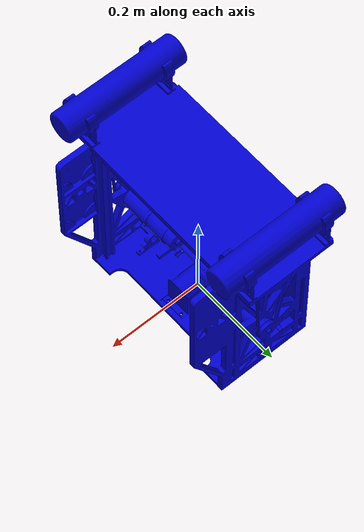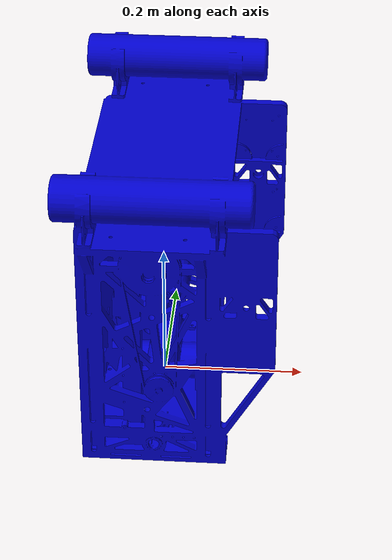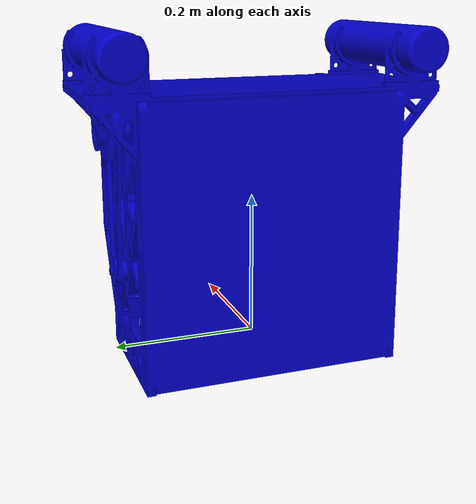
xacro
<?xml version="1.0"?>
<robot  xmlns:xacro="http://www.ros.org/wiki/xacro">

  <xacro:property name="PI" value="3.1415926535897931"/>

	<link name="torso">
	  <collision>
	    <origin rpy="0 0 0" xyz="-0.03 0 -0.042"/>
	    <geometry>
	     <mesh filename="package://robbie_description/meshes/upperBodyAss_ORIGIN.STL"/>
	   </geometry>
	 </collision>
	 <visual>
	  <origin rpy="0 0 0" xyz="-0.03 0 -0.042"/>
	  <geometry>
	    <mesh filename="package://robbie_description/meshes/upperBodyAss_ORIGIN.STL" scale="1 1 1"/>
	  </geometry>
	  <material name="blue">
	    <color rgba="0 0 .8 1"/>
	  </material>
	</visual>
	<inertial>
	  <origin xyz="0 0 ${torsoHeight/2}" rpy="0 0 0"/>
	  <mass value="${torsoMass}"/>
	  <box_inertia m="${torsoMass}" x="${torsoWidth}" y="${torsoDepth}" z="${torsoHeight}"/>
	</inertial>
	</link>

</robot>
